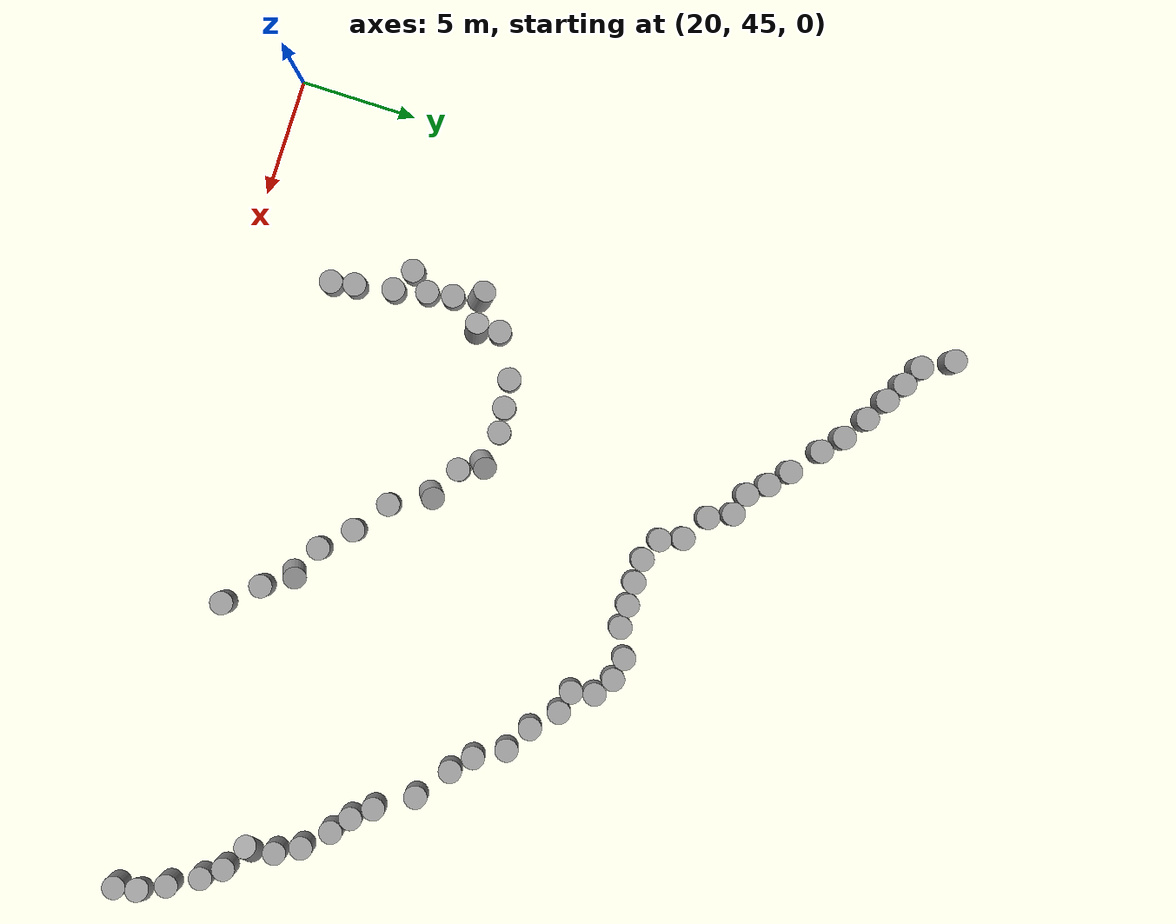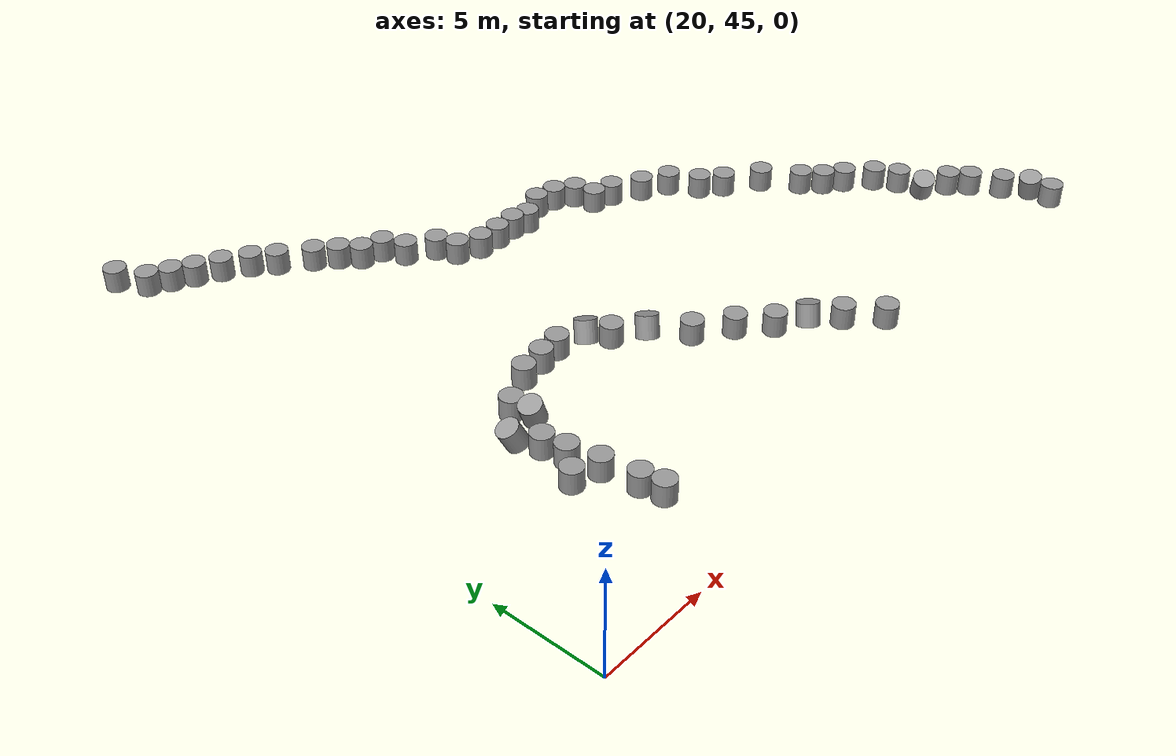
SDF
<sdf version="1.7">
 <world name="default">
  <model name="unit_cylinder_clone_20">
   <pose>29.5714 69.8204 0.452522 0.003212 -0.003102 -0.001121</pose>
   <link name="link">
    <inertial>
     <mass>1</mass>
     <inertia><ixx>0.145833</ixx><ixy>0</ixy><ixz>0</ixz><iyy>0.145833</iyy><iyz>0</iyz><izz>0.125</izz></inertia>
    </inertial>
    <collision name="collision">
     <geometry><cylinder><radius>0.5</radius><length>1</length></cylinder></geometry>
    </collision>
    <visual name="visual">
     <geometry><cylinder><radius>0.5</radius><length>1</length></cylinder></geometry>
     <material>
      <script><name>Gazebo/Grey</name><uri>file://media/materials/scripts/gazebo.material</uri></script>
     </material>
    </visual>
   </link>
  </model>
  <model name="unit_cylinder_clone_21">
   <pose>30.3704 69.1072 0.452744 0.003399 -0.003022 -0.042951</pose>
   <link name="link">
    <inertial>
     <mass>1</mass>
     <inertia><ixx>0.145833</ixx><ixy>0</ixy><ixz>0</ixz><iyy>0.145833</iyy><iyz>0</iyz><izz>0.125</izz></inertia>
    </inertial>
    <collision name="collision">
     <geometry><cylinder><radius>0.5</radius><length>1</length></cylinder></geometry>
    </collision>
    <visual name="visual">
     <geometry><cylinder><radius>0.5</radius><length>1</length></cylinder></geometry>
     <material>
      <script><name>Gazebo/Grey</name><uri>file://media/materials/scripts/gazebo.material</uri></script>
     </material>
    </visual>
   </link>
  </model>
  <model name="unit_cylinder_clone_22">
   <pose>31.0426 68.3593 0.452416 0.003112 -0.003236 0.034817</pose>
   <link name="link">
    <inertial>
     <mass>1</mass>
     <inertia><ixx>0.145833</ixx><ixy>0</ixy><ixz>0</ixz><iyy>0.145833</iyy><iyz>0</iyz><izz>0.125</izz></inertia>
    </inertial>
    <collision name="collision">
     <geometry><cylinder><radius>0.5</radius><length>1</length></cylinder></geometry>
    </collision>
    <visual name="visual">
     <geometry><cylinder><radius>0.5</radius><length>1</length></cylinder></geometry>
     <material>
      <script><name>Gazebo/Grey</name><uri>file://media/materials/scripts/gazebo.material</uri></script>
     </material>
    </visual>
   </link>
  </model>
  <model name="unit_cylinder_clone_23">
   <pose>32.0012 68.066 0.454432 0.003884 -0.003444 -0.043961</pose>
   <link name="link">
    <inertial>
     <mass>1</mass>
     <inertia><ixx>0.145833</ixx><ixy>0</ixy><ixz>0</ixz><iyy>0.145833</iyy><iyz>0</iyz><izz>0.125</izz></inertia>
    </inertial>
    <collision name="collision">
     <geometry><cylinder><radius>0.5</radius><length>1</length></cylinder></geometry>
    </collision>
    <visual name="visual">
     <geometry><cylinder><radius>0.5</radius><length>1</length></cylinder></geometry>
     <material>
      <script><name>Gazebo/Grey</name><uri>file://media/materials/scripts/gazebo.material</uri></script>
     </material>
    </visual>
   </link>
  </model>
  <model name="unit_cylinder_clone_24">
   <pose>32.4718 67.0928 0.452826 0.003288 -0.003165 -0.003406</pose>
   <link name="link">
    <inertial>
     <mass>1</mass>
     <inertia><ixx>0.145833</ixx><ixy>0</ixy><ixz>0</ixz><iyy>0.145833</iyy><iyz>0</iyz><izz>0.125</izz></inertia>
    </inertial>
    <collision name="collision">
     <geometry><cylinder><radius>0.5</radius><length>1</length></cylinder></geometry>
    </collision>
    <visual name="visual">
     <geometry><cylinder><radius>0.5</radius><length>1</length></cylinder></geometry>
     <material>
      <script><name>Gazebo/Grey</name><uri>file://media/materials/scripts/gazebo.material</uri></script>
     </material>
    </visual>
   </link>
  </model>
  <model name="unit_cylinder_clone_26">
   <pose>33.9917 65.4361 0.452225 0.003363 -0.002865 0.017191</pose>
   <link name="link">
    <inertial>
     <mass>1</mass>
     <inertia><ixx>0.145833</ixx><ixy>0</ixy><ixz>0</ixz><iyy>0.145833</iyy><iyz>0</iyz><izz>0.125</izz></inertia>
    </inertial>
    <collision name="collision">
     <geometry><cylinder><radius>0.5</radius><length>1</length></cylinder></geometry>
    </collision>
    <visual name="visual">
     <geometry><cylinder><radius>0.5</radius><length>1</length></cylinder></geometry>
     <material>
      <script><name>Gazebo/Grey</name><uri>file://media/materials/scripts/gazebo.material</uri></script>
     </material>
    </visual>
   </link>
  </model>
  <model name="unit_cylinder_clone_27">
   <pose>34.9986 64.9973 0.452847 0.004091 -0.002164 -0.00044</pose>
   <link name="link">
    <inertial>
     <mass>1</mass>
     <inertia><ixx>0.145833</ixx><ixy>0</ixy><ixz>0</ixz><iyy>0.145833</iyy><iyz>0</iyz><izz>0.125</izz></inertia>
    </inertial>
    <collision name="collision">
     <geometry><cylinder><radius>0.5</radius><length>1</length></cylinder></geometry>
    </collision>
    <visual name="visual">
     <geometry><cylinder><radius>0.5</radius><length>1</length></cylinder></geometry>
     <material>
      <script><name>Gazebo/Grey</name><uri>file://media/materials/scripts/gazebo.material</uri></script>
     </material>
    </visual>
   </link>
  </model>
  <model name="unit_cylinder_clone_25">
   <pose>33.6311 66.3688 0.454 0.00369 -0.003657 0.01249</pose>
   <link name="link">
    <inertial>
     <mass>1</mass>
     <inertia><ixx>0.145833</ixx><ixy>0</ixy><ixz>0</ixz><iyy>0.145833</iyy><iyz>0</iyz><izz>0.125</izz></inertia>
    </inertial>
    <collision name="collision">
     <geometry><cylinder><radius>0.5</radius><length>1</length></cylinder></geometry>
    </collision>
    <visual name="visual">
     <geometry><cylinder><radius>0.5</radius><length>1</length></cylinder></geometry>
     <material>
      <script><name>Gazebo/Grey</name><uri>file://media/materials/scripts/gazebo.material</uri></script>
     </material>
    </visual>
   </link>
  </model>
  <model name="unit_cylinder_clone_29">
   <pose>29.4853 57.321 0.450007 1.4e-05 -1e-06 -0.030897</pose>
   <link name="link">
    <inertial>
     <mass>1</mass>
     <inertia><ixx>0.145833</ixx><ixy>0</ixy><ixz>0</ixz><iyy>0.145833</iyy><iyz>0</iyz><izz>0.125</izz></inertia>
    </inertial>
    <collision name="collision">
     <geometry><cylinder><radius>0.5</radius><length>1</length></cylinder></geometry>
    </collision>
    <visual name="visual">
     <geometry><cylinder><radius>0.5</radius><length>1</length></cylinder></geometry>
     <material>
      <script><name>Gazebo/Grey</name><uri>file://media/materials/scripts/gazebo.material</uri></script>
     </material>
    </visual>
   </link>
  </model>
  <model name="unit_cylinder_clone_30">
   <pose>30.6933 57.4847 0.450019 1.7e-05 -1.2e-05 0.04423</pose>
   <link name="link">
    <inertial>
     <mass>1</mass>
     <inertia><ixx>0.145833</ixx><ixy>0</ixy><ixz>0</ixz><iyy>0.145833</iyy><iyz>0</iyz><izz>0.125</izz></inertia>
    </inertial>
    <collision name="collision">
     <geometry><cylinder><radius>0.5</radius><length>1</length></cylinder></geometry>
    </collision>
    <visual name="visual">
     <geometry><cylinder><radius>0.5</radius><length>1</length></cylinder></geometry>
     <material>
      <script><name>Gazebo/Grey</name><uri>file://media/materials/scripts/gazebo.material</uri></script>
     </material>
    </visual>
   </link>
  </model>
  <model name="unit_cylinder_clone_31">
   <pose>31.7457 57.6018 0.450033 1.2e-05 -1.2e-05 0.013076</pose>
   <link name="link">
    <inertial>
     <mass>1</mass>
     <inertia><ixx>0.145833</ixx><ixy>0</ixy><ixz>0</ixz><iyy>0.145833</iyy><iyz>0</iyz><izz>0.125</izz></inertia>
    </inertial>
    <collision name="collision">
     <geometry><cylinder><radius>0.5</radius><length>1</length></cylinder></geometry>
    </collision>
    <visual name="visual">
     <geometry><cylinder><radius>0.5</radius><length>1</length></cylinder></geometry>
     <material>
      <script><name>Gazebo/Grey</name><uri>file://media/materials/scripts/gazebo.material</uri></script>
     </material>
    </visual>
   </link>
  </model>
  <model name="unit_cylinder_clone_33">
   <pose>27.7032 56.3259 0.449997 1.9e-05 1.5e-05 -0.055652</pose>
   <link name="link">
    <inertial>
     <mass>1</mass>
     <inertia><ixx>0.145833</ixx><ixy>0</ixy><ixz>0</ixz><iyy>0.145833</iyy><iyz>0</iyz><izz>0.125</izz></inertia>
    </inertial>
    <collision name="collision">
     <geometry><cylinder><radius>0.5</radius><length>1</length></cylinder></geometry>
    </collision>
    <visual name="visual">
     <geometry><cylinder><radius>0.5</radius><length>1</length></cylinder></geometry>
     <material>
      <script><name>Gazebo/Grey</name><uri>file://media/materials/scripts/gazebo.material</uri></script>
     </material>
    </visual>
   </link>
  </model>
  <model name="unit_cylinder_clone_34">
   <pose>27.8324 55.3338 0.592086 0.034403 -0.351762 0.001319</pose>
   <link name="link">
    <inertial>
     <mass>1</mass>
     <inertia><ixx>0.145833</ixx><ixy>0</ixy><ixz>0</ixz><iyy>0.145833</iyy><iyz>0</iyz><izz>0.125</izz></inertia>
    </inertial>
    <collision name="collision">
     <geometry><cylinder><radius>0.5</radius><length>1</length></cylinder></geometry>
    </collision>
    <visual name="visual">
     <geometry><cylinder><radius>0.5</radius><length>1</length></cylinder></geometry>
     <material>
      <script><name>Gazebo/Grey</name><uri>file://media/materials/scripts/gazebo.material</uri></script>
     </material>
    </visual>
   </link>
  </model>
  <model name="unit_cylinder_clone_35">
   <pose>26.455 55.1006 0.417581 -0.20012 -0.405202 0.030446</pose>
   <link name="link">
    <inertial>
     <mass>1</mass>
     <inertia><ixx>0.145833</ixx><ixy>0</ixy><ixz>0</ixz><iyy>0.145833</iyy><iyz>0</iyz><izz>0.125</izz></inertia>
    </inertial>
    <collision name="collision">
     <geometry><cylinder><radius>0.5</radius><length>1</length></cylinder></geometry>
    </collision>
    <visual name="visual">
     <geometry><cylinder><radius>0.5</radius><length>1</length></cylinder></geometry>
     <material>
      <script><name>Gazebo/Grey</name><uri>file://media/materials/scripts/gazebo.material</uri></script>
     </material>
    </visual>
   </link>
  </model>
  <model name="unit_cylinder_clone_36">
   <pose>26.8684 53.9843 0.449993 8e-06 3.8e-05 0.403169</pose>
   <link name="link">
    <inertial>
     <mass>1</mass>
     <inertia><ixx>0.145833</ixx><ixy>0</ixy><ixz>0</ixz><iyy>0.145833</iyy><iyz>0</iyz><izz>0.125</izz></inertia>
    </inertial>
    <collision name="collision">
     <geometry><cylinder><radius>0.5</radius><length>1</length></cylinder></geometry>
    </collision>
    <visual name="visual">
     <geometry><cylinder><radius>0.5</radius><length>1</length></cylinder></geometry>
     <material>
      <script><name>Gazebo/Grey</name><uri>file://media/materials/scripts/gazebo.material</uri></script>
     </material>
    </visual>
   </link>
  </model>
  <model name="unit_cylinder_clone_37">
   <pose>27.0472 52.9007 0.450003 1.2e-05 -1.4e-05 -0.501799</pose>
   <link name="link">
    <inertial>
     <mass>1</mass>
     <inertia><ixx>0.145833</ixx><ixy>0</ixy><ixz>0</ixz><iyy>0.145833</iyy><iyz>0</iyz><izz>0.125</izz></inertia>
    </inertial>
    <collision name="collision">
     <geometry><cylinder><radius>0.5</radius><length>1</length></cylinder></geometry>
    </collision>
    <visual name="visual">
     <geometry><cylinder><radius>0.5</radius><length>1</length></cylinder></geometry>
     <material>
      <script><name>Gazebo/Grey</name><uri>file://media/materials/scripts/gazebo.material</uri></script>
     </material>
    </visual>
   </link>
  </model>
  <model name="unit_cylinder_clone_28">
   <pose>26.3433 52.0317 0.249998 -5e-06 -4e-06 -0.943686</pose>
   <link name="link">
    <inertial>
     <mass>1</mass>
     <inertia><ixx>0.145833</ixx><ixy>0</ixy><ixz>0</ixz><iyy>0.145833</iyy><iyz>0</iyz><izz>0.125</izz></inertia>
    </inertial>
    <collision name="collision">
     <geometry><cylinder><radius>0.5</radius><length>1</length></cylinder></geometry>
    </collision>
    <visual name="visual">
     <geometry><cylinder><radius>0.5</radius><length>1</length></cylinder></geometry>
     <material>
      <script><name>Gazebo/Grey</name><uri>file://media/materials/scripts/gazebo.material</uri></script>
     </material>
    </visual>
   </link>
  </model>
  <model name="unit_cylinder_clone_32">
   <pose>27.3691 51.5078 0.44999 4e-06 2.6e-05 0.385377</pose>
   <link name="link">
    <inertial>
     <mass>1</mass>
     <inertia><ixx>0.145833</ixx><ixy>0</ixy><ixz>0</ixz><iyy>0.145833</iyy><iyz>0</iyz><izz>0.125</izz></inertia>
    </inertial>
    <collision name="collision">
     <geometry><cylinder><radius>0.5</radius><length>1</length></cylinder></geometry>
    </collision>
    <visual name="visual">
     <geometry><cylinder><radius>0.5</radius><length>1</length></cylinder></geometry>
     <material>
      <script><name>Gazebo/Grey</name><uri>file://media/materials/scripts/gazebo.material</uri></script>
     </material>
    </visual>
   </link>
  </model>
  <model name="unit_cylinder_clone_38">
   <pose>27.6751 49.883 0.449987 -5e-06 2.5e-05 -0.007643</pose>
   <link name="link">
    <inertial>
     <mass>1</mass>
     <inertia><ixx>0.145833</ixx><ixy>0</ixy><ixz>0</ixz><iyy>0.145833</iyy><iyz>0</iyz><izz>0.125</izz></inertia>
    </inertial>
    <collision name="collision">
     <geometry><cylinder><radius>0.5</radius><length>1</length></cylinder></geometry>
    </collision>
    <visual name="visual">
     <geometry><cylinder><radius>0.5</radius><length>1</length></cylinder></geometry>
     <material>
      <script><name>Gazebo/Grey</name><uri>file://media/materials/scripts/gazebo.material</uri></script>
     </material>
    </visual>
   </link>
  </model>
  <model name="unit_cylinder_clone_39">
   <pose>27.8675 48.9006 0.449988 -1.5e-05 1.5e-05 -0.005053</pose>
   <link name="link">
    <inertial>
     <mass>1</mass>
     <inertia><ixx>0.145833</ixx><ixy>0</ixy><ixz>0</ixz><iyy>0.145833</iyy><iyz>0</iyz><izz>0.125</izz></inertia>
    </inertial>
    <collision name="collision">
     <geometry><cylinder><radius>0.5</radius><length>1</length></cylinder></geometry>
    </collision>
    <visual name="visual">
     <geometry><cylinder><radius>0.5</radius><length>1</length></cylinder></geometry>
     <material>
      <script><name>Gazebo/Grey</name><uri>file://media/materials/scripts/gazebo.material</uri></script>
     </material>
    </visual>
   </link>
  </model>
  <model name="unit_cylinder_clone_83">
   <pose>42.1803 48.649 0.450042 -1e-06 5e-06 -0.000509</pose>
   <link name="link">
    <inertial>
     <mass>1</mass>
     <inertia><ixx>0.145833</ixx><ixy>0</ixy><ixz>0</ixz><iyy>0.145833</iyy><iyz>0</iyz><izz>0.125</izz></inertia>
    </inertial>
    <collision name="collision">
     <geometry><cylinder><radius>0.5</radius><length>1</length></cylinder></geometry>
    </collision>
    <visual name="visual">
     <geometry><cylinder><radius>0.5</radius><length>1</length></cylinder></geometry>
     <material>
      <script><name>Gazebo/Grey</name><uri>file://media/materials/scripts/gazebo.material</uri></script>
     </material>
    </visual>
   </link>
  </model>
  <model name="unit_cylinder_clone_84">
   <pose>41.0003 50.0003 0.449998 -0.00039 0.00037 -0.000646</pose>
   <link name="link">
    <inertial>
     <mass>1</mass>
     <inertia><ixx>0.145833</ixx><ixy>0</ixy><ixz>0</ixz><iyy>0.145833</iyy><iyz>0</iyz><izz>0.125</izz></inertia>
    </inertial>
    <collision name="collision">
     <geometry><cylinder><radius>0.5</radius><length>1</length></cylinder></geometry>
    </collision>
    <visual name="visual">
     <geometry><cylinder><radius>0.5</radius><length>1</length></cylinder></geometry>
     <material>
      <script><name>Gazebo/Grey</name><uri>file://media/materials/scripts/gazebo.material</uri></script>
     </material>
    </visual>
   </link>
  </model>
  <model name="unit_cylinder_clone_85">
   <pose>40.1174 51.1351 0.394031 -0.273971 0.236251 -0.044214</pose>
   <link name="link">
    <inertial>
     <mass>1</mass>
     <inertia><ixx>0.145833</ixx><ixy>0</ixy><ixz>0</ixz><iyy>0.145833</iyy><iyz>0</iyz><izz>0.125</izz></inertia>
    </inertial>
    <collision name="collision">
     <geometry><cylinder><radius>0.5</radius><length>1</length></cylinder></geometry>
    </collision>
    <visual name="visual">
     <geometry><cylinder><radius>0.5</radius><length>1</length></cylinder></geometry>
     <material>
      <script><name>Gazebo/Grey</name><uri>file://media/materials/scripts/gazebo.material</uri></script>
     </material>
    </visual>
   </link>
  </model>
  <model name="unit_cylinder_clone_86">
   <pose>38.7336 51.8321 0.450043 0 4e-06 -0.000504</pose>
   <link name="link">
    <inertial>
     <mass>1</mass>
     <inertia><ixx>0.145833</ixx><ixy>0</ixy><ixz>0</ixz><iyy>0.145833</iyy><iyz>0</iyz><izz>0.125</izz></inertia>
    </inertial>
    <collision name="collision">
     <geometry><cylinder><radius>0.5</radius><length>1</length></cylinder></geometry>
    </collision>
    <visual name="visual">
     <geometry><cylinder><radius>0.5</radius><length>1</length></cylinder></geometry>
     <material>
      <script><name>Gazebo/Grey</name><uri>file://media/materials/scripts/gazebo.material</uri></script>
     </material>
    </visual>
   </link>
  </model>
  <model name="unit_cylinder_clone_87">
   <pose>37.5515 52.9999 0.450043 -1.6e-05 4e-06 -0.000531</pose>
   <link name="link">
    <inertial>
     <mass>1</mass>
     <inertia><ixx>0.145833</ixx><ixy>0</ixy><ixz>0</ixz><iyy>0.145833</iyy><iyz>0</iyz><izz>0.125</izz></inertia>
    </inertial>
    <collision name="collision">
     <geometry><cylinder><radius>0.5</radius><length>1</length></cylinder></geometry>
    </collision>
    <visual name="visual">
     <geometry><cylinder><radius>0.5</radius><length>1</length></cylinder></geometry>
     <material>
      <script><name>Gazebo/Grey</name><uri>file://media/materials/scripts/gazebo.material</uri></script>
     </material>
    </visual>
   </link>
  </model>
  <model name="unit_cylinder_clone_88">
   <pose>36.068 54.0709 0.453509 -0.008133 0.007411 0.000344</pose>
   <link name="link">
    <inertial>
     <mass>1</mass>
     <inertia><ixx>0.145833</ixx><ixy>0</ixy><ixz>0</ixz><iyy>0.145833</iyy><iyz>0</iyz><izz>0.125</izz></inertia>
    </inertial>
    <collision name="collision">
     <geometry><cylinder><radius>0.5</radius><length>1</length></cylinder></geometry>
    </collision>
    <visual name="visual">
     <geometry><cylinder><radius>0.5</radius><length>1</length></cylinder></geometry>
     <material>
      <script><name>Gazebo/Grey</name><uri>file://media/materials/scripts/gazebo.material</uri></script>
     </material>
    </visual>
   </link>
  </model>
  <model name="unit_cylinder_clone_89">
   <pose>35.1248 55.6598 0.39922 -0.288234 0.248014 -0.04712</pose>
   <link name="link">
    <inertial>
     <mass>1</mass>
     <inertia><ixx>0.145833</ixx><ixy>0</ixy><ixz>0</ixz><iyy>0.145833</iyy><iyz>0</iyz><izz>0.125</izz></inertia>
    </inertial>
    <collision name="collision">
     <geometry><cylinder><radius>0.5</radius><length>1</length></cylinder></geometry>
    </collision>
    <visual name="visual">
     <geometry><cylinder><radius>0.5</radius><length>1</length></cylinder></geometry>
     <material>
      <script><name>Gazebo/Grey</name><uri>file://media/materials/scripts/gazebo.material</uri></script>
     </material>
    </visual>
   </link>
  </model>
  <model name="unit_cylinder_clone_90">
   <pose>33.2296 57.3401 0.41302 -0.332784 0.278226 -0.06722</pose>
   <link name="link">
    <inertial>
     <mass>1</mass>
     <inertia><ixx>0.145833</ixx><ixy>0</ixy><ixz>0</ixz><iyy>0.145833</iyy><iyz>0</iyz><izz>0.125</izz></inertia>
    </inertial>
    <collision name="collision">
     <geometry><cylinder><radius>0.5</radius><length>1</length></cylinder></geometry>
    </collision>
    <visual name="visual">
     <geometry><cylinder><radius>0.5</radius><length>1</length></cylinder></geometry>
     <material>
      <script><name>Gazebo/Grey</name><uri>file://media/materials/scripts/gazebo.material</uri></script>
     </material>
    </visual>
   </link>
  </model>
  <model name="unit_cylinder_clone_91">
   <pose>33.7656 56.4373 0.450038 0 0 -0.008697</pose>
   <link name="link">
    <inertial>
     <mass>1</mass>
     <inertia><ixx>0.145833</ixx><ixy>0</ixy><ixz>0</ixz><iyy>0.145833</iyy><iyz>0</iyz><izz>0.125</izz></inertia>
    </inertial>
    <collision name="collision">
     <geometry><cylinder><radius>0.5</radius><length>1</length></cylinder></geometry>
    </collision>
    <visual name="visual">
     <geometry><cylinder><radius>0.5</radius><length>1</length></cylinder></geometry>
     <material>
      <script><name>Gazebo/Grey</name><uri>file://media/materials/scripts/gazebo.material</uri></script>
     </material>
    </visual>
   </link>
  </model>
  <model name="unit_cylinder_clone_101">
   <pose>28.3472 70.7907 0.452419 0.003703 -0.002369 -0.001269</pose>
   <link name="link">
    <inertial>
     <mass>1</mass>
     <inertia><ixx>0.145833</ixx><ixy>0</ixy><ixz>0</ixz><iyy>0.145833</iyy><iyz>0</iyz><izz>0.125</izz></inertia>
    </inertial>
    <collision name="collision">
     <geometry><cylinder><radius>0.5</radius><length>1</length></cylinder></geometry>
    </collision>
    <visual name="visual">
     <geometry><cylinder><radius>0.5</radius><length>1</length></cylinder></geometry>
     <material>
      <script><name>Gazebo/Grey</name><uri>file://media/materials/scripts/gazebo.material</uri></script>
     </material>
    </visual>
   </link>
  </model>
  <model name="unit_cylinder_clone_102">
   <pose>27.5018 71.5377 0.453227 0.003804 -0.00243 -0.00196</pose>
   <link name="link">
    <inertial>
     <mass>1</mass>
     <inertia><ixx>0.145833</ixx><ixy>0</ixy><ixz>0</ixz><iyy>0.145833</iyy><iyz>0</iyz><izz>0.125</izz></inertia>
    </inertial>
    <collision name="collision">
     <geometry><cylinder><radius>0.5</radius><length>1</length></cylinder></geometry>
    </collision>
    <visual name="visual">
     <geometry><cylinder><radius>0.5</radius><length>1</length></cylinder></geometry>
     <material>
      <script><name>Gazebo/Grey</name><uri>file://media/materials/scripts/gazebo.material</uri></script>
     </material>
    </visual>
   </link>
  </model>
  <model name="unit_cylinder_clone_103">
   <pose>26.4496 72.2174 0.453242 0.003814 -0.002434 -0.001864</pose>
   <link name="link">
    <inertial>
     <mass>1</mass>
     <inertia><ixx>0.145833</ixx><ixy>0</ixy><ixz>0</ixz><iyy>0.145833</iyy><iyz>0</iyz><izz>0.125</izz></inertia>
    </inertial>
    <collision name="collision">
     <geometry><cylinder><radius>0.5</radius><length>1</length></cylinder></geometry>
    </collision>
    <visual name="visual">
     <geometry><cylinder><radius>0.5</radius><length>1</length></cylinder></geometry>
     <material>
      <script><name>Gazebo/Grey</name><uri>file://media/materials/scripts/gazebo.material</uri></script>
     </material>
    </visual>
   </link>
  </model>
  <model name="unit_cylinder_clone_104">
   <pose>25.4528 72.7759 0.452923 0.003682 -0.002552 0.035584</pose>
   <link name="link">
    <inertial>
     <mass>1</mass>
     <inertia><ixx>0.145833</ixx><ixy>0</ixy><ixz>0</ixz><iyy>0.145833</iyy><iyz>0</iyz><izz>0.125</izz></inertia>
    </inertial>
    <collision name="collision">
     <geometry><cylinder><radius>0.5</radius><length>1</length></cylinder></geometry>
    </collision>
    <visual name="visual">
     <geometry><cylinder><radius>0.5</radius><length>1</length></cylinder></geometry>
     <material>
      <script><name>Gazebo/Grey</name><uri>file://media/materials/scripts/gazebo.material</uri></script>
     </material>
    </visual>
   </link>
  </model>
  <model name="unit_cylinder_clone_105">
   <pose>24.5832 73.2699 0.452668 0.003693 -0.002472 0.019302</pose>
   <link name="link">
    <inertial>
     <mass>1</mass>
     <inertia><ixx>0.145833</ixx><ixy>0</ixy><ixz>0</ixz><iyy>0.145833</iyy><iyz>0</iyz><izz>0.125</izz></inertia>
    </inertial>
    <collision name="collision">
     <geometry><cylinder><radius>0.5</radius><length>1</length></cylinder></geometry>
    </collision>
    <visual name="visual">
     <geometry><cylinder><radius>0.5</radius><length>1</length></cylinder></geometry>
     <material>
      <script><name>Gazebo/Grey</name><uri>file://media/materials/scripts/gazebo.material</uri></script>
     </material>
    </visual>
   </link>
  </model>
  <model name="unit_cylinder_clone_106">
   <pose>23.698 73.7361 0.452273 0.00368 -0.00235 -0.002224</pose>
   <link name="link">
    <inertial>
     <mass>1</mass>
     <inertia><ixx>0.145833</ixx><ixy>0</ixy><ixz>0</ixz><iyy>0.145833</iyy><iyz>0</iyz><izz>0.125</izz></inertia>
    </inertial>
    <collision name="collision">
     <geometry><cylinder><radius>0.5</radius><length>1</length></cylinder></geometry>
    </collision>
    <visual name="visual">
     <geometry><cylinder><radius>0.5</radius><length>1</length></cylinder></geometry>
     <material>
      <script><name>Gazebo/Grey</name><uri>file://media/materials/scripts/gazebo.material</uri></script>
     </material>
    </visual>
   </link>
  </model>
  <model name="unit_cylinder_clone_107">
   <pose>22.9983 74.9972 0.455386 0.004281 -0.002741 -0.000547</pose>
   <link name="link">
    <inertial>
     <mass>1</mass>
     <inertia><ixx>0.145833</ixx><ixy>0</ixy><ixz>0</ixz><iyy>0.145833</iyy><iyz>0</iyz><izz>0.125</izz></inertia>
    </inertial>
    <collision name="collision">
     <geometry><cylinder><radius>0.5</radius><length>1</length></cylinder></geometry>
    </collision>
    <visual name="visual">
     <geometry><cylinder><radius>0.5</radius><length>1</length></cylinder></geometry>
     <material>
      <script><name>Gazebo/Grey</name><uri>file://media/materials/scripts/gazebo.material</uri></script>
     </material>
    </visual>
   </link>
  </model>
  <model name="unit_cylinder_clone_205">
   <pose>43.2455 62.6598 0.452208 0.002345 -0.002445 -0.000655</pose>
   <link name="link">
    <inertial>
     <mass>1</mass>
     <inertia><ixx>0.145833</ixx><ixy>0</ixy><ixz>0</ixz><iyy>0.145833</iyy><iyz>0</iyz><izz>0.125</izz></inertia>
    </inertial>
    <collision name="collision">
     <geometry><cylinder><radius>0.5</radius><length>1</length></cylinder></geometry>
    </collision>
    <visual name="visual">
     <geometry><cylinder><radius>0.5</radius><length>1</length></cylinder></geometry>
     <material>
      <script><name>Gazebo/Grey</name><uri>file://media/materials/scripts/gazebo.material</uri></script>
     </material>
    </visual>
   </link>
  </model>
  <model name="unit_cylinder_clone_206">
   <pose>44.4141 61.9986 0.453749 0.002439 -0.002883 -0.000625</pose>
   <link name="link">
    <inertial>
     <mass>1</mass>
     <inertia><ixx>0.145833</ixx><ixy>0</ixy><ixz>0</ixz><iyy>0.145833</iyy><iyz>0</iyz><izz>0.125</izz></inertia>
    </inertial>
    <collision name="collision">
     <geometry><cylinder><radius>0.5</radius><length>1</length></cylinder></geometry>
    </collision>
    <visual name="visual">
     <geometry><cylinder><radius>0.5</radius><length>1</length></cylinder></geometry>
     <material>
      <script><name>Gazebo/Grey</name><uri>file://media/materials/scripts/gazebo.material</uri></script>
     </material>
    </visual>
   </link>
  </model>
  <model name="unit_cylinder_clone_207">
   <pose>45.1501 60.7491 0.452673 0.002905 -0.00303 -0.000745</pose>
   <link name="link">
    <inertial>
     <mass>1</mass>
     <inertia><ixx>0.145833</ixx><ixy>0</ixy><ixz>0</ixz><iyy>0.145833</iyy><iyz>0</iyz><izz>0.125</izz></inertia>
    </inertial>
    <collision name="collision">
     <geometry><cylinder><radius>0.5</radius><length>1</length></cylinder></geometry>
    </collision>
    <visual name="visual">
     <geometry><cylinder><radius>0.5</radius><length>1</length></cylinder></geometry>
     <material>
      <script><name>Gazebo/Grey</name><uri>file://media/materials/scripts/gazebo.material</uri></script>
     </material>
    </visual>
   </link>
  </model>
  <model name="unit_cylinder_clone_208">
   <pose>45.9983 59.9985 0.4531 0.00297 -0.003098 -0.000839</pose>
   <link name="link">
    <inertial>
     <mass>1</mass>
     <inertia><ixx>0.145833</ixx><ixy>0</ixy><ixz>0</ixz><iyy>0.145833</iyy><iyz>0</iyz><izz>0.125</izz></inertia>
    </inertial>
    <collision name="collision">
     <geometry><cylinder><radius>0.5</radius><length>1</length></cylinder></geometry>
    </collision>
    <visual name="visual">
     <geometry><cylinder><radius>0.5</radius><length>1</length></cylinder></geometry>
     <material>
      <script><name>Gazebo/Grey</name><uri>file://media/materials/scripts/gazebo.material</uri></script>
     </material>
    </visual>
   </link>
  </model>
  <model name="unit_cylinder_clone_209">
   <pose>47.4781 58.9463 0.454484 0.003372 -0.003516 -0.000238</pose>
   <link name="link">
    <inertial>
     <mass>1</mass>
     <inertia><ixx>0.145833</ixx><ixy>0</ixy><ixz>0</ixz><iyy>0.145833</iyy><iyz>0</iyz><izz>0.125</izz></inertia>
    </inertial>
    <collision name="collision">
     <geometry><cylinder><radius>0.5</radius><length>1</length></cylinder></geometry>
    </collision>
    <visual name="visual">
     <geometry><cylinder><radius>0.5</radius><length>1</length></cylinder></geometry>
     <material>
      <script><name>Gazebo/Grey</name><uri>file://media/materials/scripts/gazebo.material</uri></script>
     </material>
    </visual>
   </link>
  </model>
  <model name="unit_cylinder_clone_210">
   <pose>48.4934 57.4036 0.45315 0.003413 -0.002633 -0.150084</pose>
   <link name="link">
    <inertial>
     <mass>1</mass>
     <inertia><ixx>0.145833</ixx><ixy>0</ixy><ixz>0</ixz><iyy>0.145833</iyy><iyz>0</iyz><izz>0.125</izz></inertia>
    </inertial>
    <collision name="collision">
     <geometry><cylinder><radius>0.5</radius><length>1</length></cylinder></geometry>
    </collision>
    <visual name="visual">
     <geometry><cylinder><radius>0.5</radius><length>1</length></cylinder></geometry>
     <material>
      <script><name>Gazebo/Grey</name><uri>file://media/materials/scripts/gazebo.material</uri></script>
     </material>
    </visual>
   </link>
  </model>
  <model name="unit_cylinder_clone_211">
   <pose>49.1778 56.6061 0.45289 0.003079 -0.002971 -0.039608</pose>
   <link name="link">
    <inertial>
     <mass>1</mass>
     <inertia><ixx>0.145833</ixx><ixy>0</ixy><ixz>0</ixz><iyy>0.145833</iyy><iyz>0</iyz><izz>0.125</izz></inertia>
    </inertial>
    <collision name="collision">
     <geometry><cylinder><radius>0.5</radius><length>1</length></cylinder></geometry>
    </collision>
    <visual name="visual">
     <geometry><cylinder><radius>0.5</radius><length>1</length></cylinder></geometry>
     <material>
      <script><name>Gazebo/Grey</name><uri>file://media/materials/scripts/gazebo.material</uri></script>
     </material>
    </visual>
   </link>
  </model>
  <model name="unit_cylinder_clone_212">
   <pose>49.9755 55.9881 0.45351 0.00299 -0.003365 0.028053</pose>
   <link name="link">
    <inertial>
     <mass>1</mass>
     <inertia><ixx>0.145833</ixx><ixy>0</ixy><ixz>0</ixz><iyy>0.145833</iyy><iyz>0</iyz><izz>0.125</izz></inertia>
    </inertial>
    <collision name="collision">
     <geometry><cylinder><radius>0.5</radius><length>1</length></cylinder></geometry>
    </collision>
    <visual name="visual">
     <geometry><cylinder><radius>0.5</radius><length>1</length></cylinder></geometry>
     <material>
      <script><name>Gazebo/Grey</name><uri>file://media/materials/scripts/gazebo.material</uri></script>
     </material>
    </visual>
   </link>
  </model>
  <model name="unit_cylinder_clone_213">
   <pose>50.9981 54.9982 0.453632 0.003281 -0.003471 -0.000616</pose>
   <link name="link">
    <inertial>
     <mass>1</mass>
     <inertia><ixx>0.145833</ixx><ixy>0</ixy><ixz>0</ixz><iyy>0.145833</iyy><iyz>0</iyz><izz>0.125</izz></inertia>
    </inertial>
    <collision name="collision">
     <geometry><cylinder><radius>0.5</radius><length>1</length></cylinder></geometry>
    </collision>
    <visual name="visual">
     <geometry><cylinder><radius>0.5</radius><length>1</length></cylinder></geometry>
     <material>
      <script><name>Gazebo/Grey</name><uri>file://media/materials/scripts/gazebo.material</uri></script>
     </material>
    </visual>
   </link>
  </model>
  <model name="unit_cylinder_clone_214">
   <pose>51.5519 53.9986 0.452587 0.00276 -0.003207 -0.000844</pose>
   <link name="link">
    <inertial>
     <mass>1</mass>
     <inertia><ixx>0.145833</ixx><ixy>0</ixy><ixz>0</ixz><iyy>0.145833</iyy><iyz>0</iyz><izz>0.125</izz></inertia>
    </inertial>
    <collision name="collision">
     <geometry><cylinder><radius>0.5</radius><length>1</length></cylinder></geometry>
    </collision>
    <visual name="visual">
     <geometry><cylinder><radius>0.5</radius><length>1</length></cylinder></geometry>
     <material>
      <script><name>Gazebo/Grey</name><uri>file://media/materials/scripts/gazebo.material</uri></script>
     </material>
    </visual>
   </link>
  </model>
  <model name="unit_cylinder_clone_215">
   <pose>51.8367 52.8677 0.41003 0.276398 -0.318286 -0.046218</pose>
   <link name="link">
    <inertial>
     <mass>1</mass>
     <inertia><ixx>0.145833</ixx><ixy>0</ixy><ixz>0</ixz><iyy>0.145833</iyy><iyz>0</iyz><izz>0.125</izz></inertia>
    </inertial>
    <collision name="collision">
     <geometry><cylinder><radius>0.5</radius><length>1</length></cylinder></geometry>
    </collision>
    <visual name="visual">
     <geometry><cylinder><radius>0.5</radius><length>1</length></cylinder></geometry>
     <material>
      <script><name>Gazebo/Grey</name><uri>file://media/materials/scripts/gazebo.material</uri></script>
     </material>
    </visual>
   </link>
  </model>
  <model name="unit_cylinder_clone_216">
   <pose>52.85 52.1572 0.45198 0.002276 -0.003284 -0.012955</pose>
   <link name="link">
    <inertial>
     <mass>1</mass>
     <inertia><ixx>0.145833</ixx><ixy>0</ixy><ixz>0</ixz><iyy>0.145833</iyy><iyz>0</iyz><izz>0.125</izz></inertia>
    </inertial>
    <collision name="collision">
     <geometry><cylinder><radius>0.5</radius><length>1</length></cylinder></geometry>
    </collision>
    <visual name="visual">
     <geometry><cylinder><radius>0.5</radius><length>1</length></cylinder></geometry>
     <material>
      <script><name>Gazebo/Grey</name><uri>file://media/materials/scripts/gazebo.material</uri></script>
     </material>
    </visual>
   </link>
  </model>
  <model name="unit_cylinder_clone_217">
   <pose>53.5141 51.3612 0.452622 0.001989 -0.003772 0.051408</pose>
   <link name="link">
    <inertial>
     <mass>1</mass>
     <inertia><ixx>0.145833</ixx><ixy>0</ixy><ixz>0</ixz><iyy>0.145833</iyy><iyz>0</iyz><izz>0.125</izz></inertia>
    </inertial>
    <collision name="collision">
     <geometry><cylinder><radius>0.5</radius><length>1</length></cylinder></geometry>
    </collision>
    <visual name="visual">
     <geometry><cylinder><radius>0.5</radius><length>1</length></cylinder></geometry>
     <material>
      <script><name>Gazebo/Grey</name><uri>file://media/materials/scripts/gazebo.material</uri></script>
     </material>
    </visual>
   </link>
  </model>
  <model name="unit_cylinder_clone_218">
   <pose>54.2555 50.0867 0.452709 0.001747 -0.003818 -0.00066</pose>
   <link name="link">
    <inertial>
     <mass>1</mass>
     <inertia><ixx>0.145833</ixx><ixy>0</ixy><ixz>0</ixz><iyy>0.145833</iyy><iyz>0</iyz><izz>0.125</izz></inertia>
    </inertial>
    <collision name="collision">
     <geometry><cylinder><radius>0.5</radius><length>1</length></cylinder></geometry>
    </collision>
    <visual name="visual">
     <geometry><cylinder><radius>0.5</radius><length>1</length></cylinder></geometry>
     <material>
      <script><name>Gazebo/Grey</name><uri>file://media/materials/scripts/gazebo.material</uri></script>
     </material>
    </visual>
   </link>
  </model>
  <model name="unit_cylinder_clone_219">
   <pose>54.8618 48.9882 0.551501 0.028611 -0.227382 -0.012059</pose>
   <link name="link">
    <inertial>
     <mass>1</mass>
     <inertia><ixx>0.145833</ixx><ixy>0</ixy><ixz>0</ixz><iyy>0.145833</iyy><iyz>0</iyz><izz>0.125</izz></inertia>
    </inertial>
    <collision name="collision">
     <geometry><cylinder><radius>0.5</radius><length>1</length></cylinder></geometry>
    </collision>
    <visual name="visual">
     <geometry><cylinder><radius>0.5</radius><length>1</length></cylinder></geometry>
     <material>
      <script><name>Gazebo/Grey</name><uri>file://media/materials/scripts/gazebo.material</uri></script>
     </material>
    </visual>
   </link>
  </model>
  <model name="unit_cylinder_clone_220">
   <pose>54.9987 47.9973 0.452288 0.000851 -0.003707 0.006528</pose>
   <link name="link">
    <inertial>
     <mass>1</mass>
     <inertia><ixx>0.145833</ixx><ixy>0</ixy><ixz>0</ixz><iyy>0.145833</iyy><iyz>0</iyz><izz>0.125</izz></inertia>
    </inertial>
    <collision name="collision">
     <geometry><cylinder><radius>0.5</radius><length>1</length></cylinder></geometry>
    </collision>
    <visual name="visual">
     <geometry><cylinder><radius>0.5</radius><length>1</length></cylinder></geometry>
     <material>
      <script><name>Gazebo/Grey</name><uri>file://media/materials/scripts/gazebo.material</uri></script>
     </material>
    </visual>
   </link>
  </model>
  <model name="unit_cylinder_clone_230">
   <pose>42.2484 63.6293 0.25 0 0 -0.008661</pose>
   <link name="link">
    <inertial>
     <mass>1</mass>
     <inertia><ixx>0.145833</ixx><ixy>0</ixy><ixz>0</ixz><iyy>0.145833</iyy><iyz>0</iyz><izz>0.125</izz></inertia>
    </inertial>
    <collision name="collision">
     <geometry><cylinder><radius>0.5</radius><length>1</length></cylinder></geometry>
    </collision>
    <visual name="visual">
     <geometry><cylinder><radius>0.5</radius><length>1</length></cylinder></geometry>
     <material>
      <script><name>Gazebo/Grey</name><uri>file://media/materials/scripts/gazebo.material</uri></script>
     </material>
    </visual>
   </link>
  </model>
  <model name="unit_cylinder_clone_231">
   <pose>39.2388 65.5579 0.249998 -5e-06 -0 -0.00011</pose>
   <link name="link">
    <inertial>
     <mass>1</mass>
     <inertia><ixx>0.145833</ixx><ixy>0</ixy><ixz>0</ixz><iyy>0.145833</iyy><iyz>0</iyz><izz>0.125</izz></inertia>
    </inertial>
    <collision name="collision">
     <geometry><cylinder><radius>0.5</radius><length>1</length></cylinder></geometry>
    </collision>
    <visual name="visual">
     <geometry><cylinder><radius>0.5</radius><length>1</length></cylinder></geometry>
     <material>
      <script><name>Gazebo/Grey</name><uri>file://media/materials/scripts/gazebo.material</uri></script>
     </material>
    </visual>
   </link>
  </model>
  <model name="unit_cylinder_clone_232">
   <pose>40.2238 65.3846 0.250002 0 3e-06 0.008781</pose>
   <link name="link">
    <inertial>
     <mass>1</mass>
     <inertia><ixx>0.145833</ixx><ixy>0</ixy><ixz>0</ixz><iyy>0.145833</iyy><iyz>0</iyz><izz>0.125</izz></inertia>
    </inertial>
    <collision name="collision">
     <geometry><cylinder><radius>0.5</radius><length>1</length></cylinder></geometry>
    </collision>
    <visual name="visual">
     <geometry><cylinder><radius>0.5</radius><length>1</length></cylinder></geometry>
     <material>
      <script><name>Gazebo/Grey</name><uri>file://media/materials/scripts/gazebo.material</uri></script>
     </material>
    </visual>
   </link>
  </model>
  <model name="unit_cylinder_clone_233">
   <pose>41.2727 63.8517 0.250001 -0 2e-06 -0.026529</pose>
   <link name="link">
    <inertial>
     <mass>1</mass>
     <inertia><ixx>0.145833</ixx><ixy>0</ixy><ixz>0</ixz><iyy>0.145833</iyy><iyz>0</iyz><izz>0.125</izz></inertia>
    </inertial>
    <collision name="collision">
     <geometry><cylinder><radius>0.5</radius><length>1</length></cylinder></geometry>
    </collision>
    <visual name="visual">
     <geometry><cylinder><radius>0.5</radius><length>1</length></cylinder></geometry>
     <material>
      <script><name>Gazebo/Grey</name><uri>file://media/materials/scripts/gazebo.material</uri></script>
     </material>
    </visual>
   </link>
  </model>
  <model name="unit_cylinder_clone_234">
   <pose>41.0547 64.8282 0.25 0 -0 0.016913</pose>
   <link name="link">
    <inertial>
     <mass>1</mass>
     <inertia><ixx>0.145833</ixx><ixy>0</ixy><ixz>0</ixz><iyy>0.145833</iyy><iyz>0</iyz><izz>0.125</izz></inertia>
    </inertial>
    <collision name="collision">
     <geometry><cylinder><radius>0.5</radius><length>1</length></cylinder></geometry>
    </collision>
    <visual name="visual">
     <geometry><cylinder><radius>0.5</radius><length>1</length></cylinder></geometry>
     <material>
      <script><name>Gazebo/Grey</name><uri>file://media/materials/scripts/gazebo.material</uri></script>
     </material>
    </visual>
   </link>
  </model>
  <model name="unit_cylinder_clone_235">
   <pose>36.0262 64.962 0.453198 0.004287 0.002058 -0.010456</pose>
   <link name="link">
    <inertial>
     <mass>1</mass>
     <inertia><ixx>0.145833</ixx><ixy>0</ixy><ixz>0</ixz><iyy>0.145833</iyy><iyz>0</iyz><izz>0.125</izz></inertia>
    </inertial>
    <collision name="collision">
     <geometry><cylinder><radius>0.5</radius><length>1</length></cylinder></geometry>
    </collision>
    <visual name="visual">
     <geometry><cylinder><radius>0.5</radius><length>1</length></cylinder></geometry>
     <material>
      <script><name>Gazebo/Grey</name><uri>file://media/materials/scripts/gazebo.material</uri></script>
     </material>
    </visual>
   </link>
  </model>
  <model name="unit_cylinder_clone_236">
   <pose>37.0256 64.9977 0.45134 0.004304 0.002009 0.000535</pose>
   <link name="link">
    <inertial>
     <mass>1</mass>
     <inertia><ixx>0.145833</ixx><ixy>0</ixy><ixz>0</ixz><iyy>0.145833</iyy><iyz>0</iyz><izz>0.125</izz></inertia>
    </inertial>
    <collision name="collision">
     <geometry><cylinder><radius>0.5</radius><length>1</length></cylinder></geometry>
    </collision>
    <visual name="visual">
     <geometry><cylinder><radius>0.5</radius><length>1</length></cylinder></geometry>
     <material>
      <script><name>Gazebo/Grey</name><uri>file://media/materials/scripts/gazebo.material</uri></script>
     </material>
    </visual>
   </link>
  </model>
  <model name="unit_cylinder_clone_237">
   <pose>38.0284 65.0106 0.249992 1e-06 0 -0.002452</pose>
   <link name="link">
    <inertial>
     <mass>1</mass>
     <inertia><ixx>0.145833</ixx><ixy>0</ixy><ixz>0</ixz><iyy>0.145833</iyy><iyz>0</iyz><izz>0.125</izz></inertia>
    </inertial>
    <collision name="collision">
     <geometry><cylinder><radius>0.5</radius><length>1</length></cylinder></geometry>
    </collision>
    <visual name="visual">
     <geometry><cylinder><radius>0.5</radius><length>1</length></cylinder></geometry>
     <material>
      <script><name>Gazebo/Grey</name><uri>file://media/materials/scripts/gazebo.material</uri></script>
     </material>
    </visual>
   </link>
  </model>
 </world>
</sdf>
